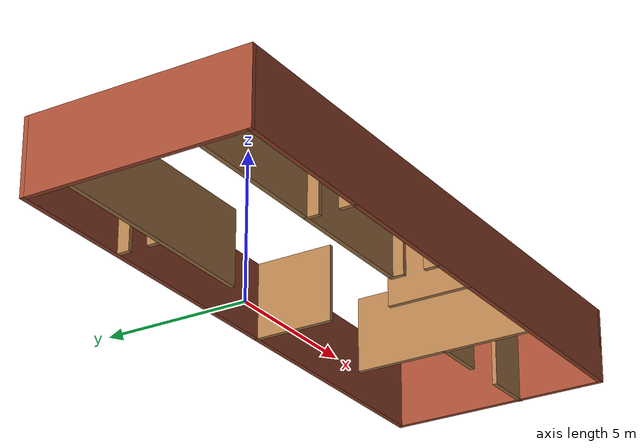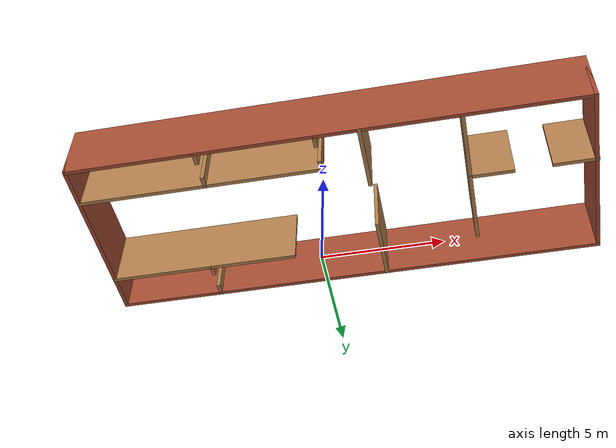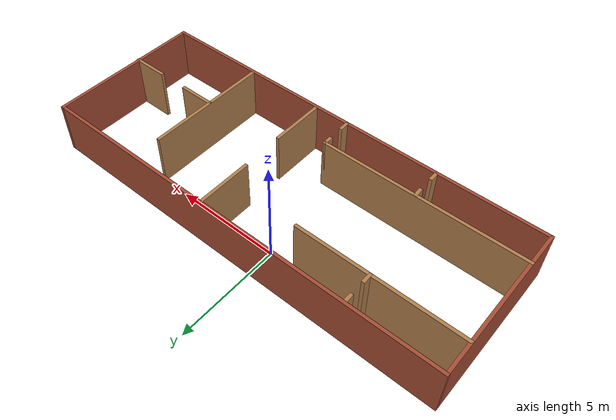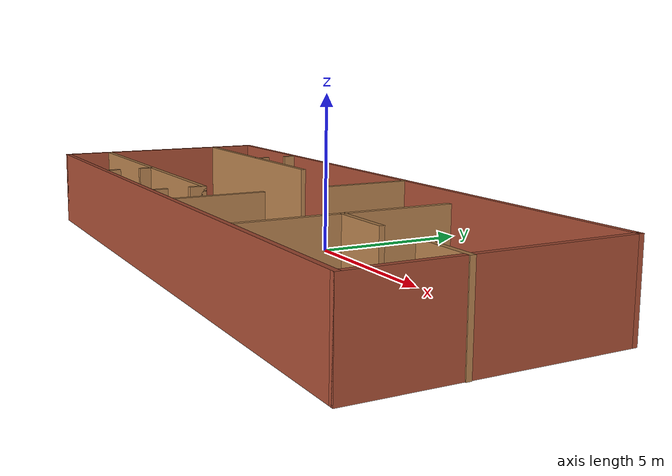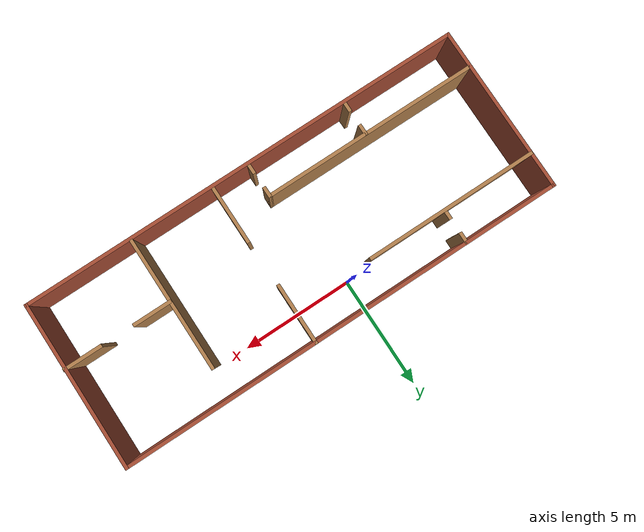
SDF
<?xml version='1.0'?>
<sdf version='1.7'>
  <model name='maze'>
    <pose>1.20188 -2.39312 0 0 -0 0</pose>
    <link name='Wall_1'>
      <collision name='Wall_1_Collision'>
        <geometry>
          <box>
            <size>7.5 0.15 2.5</size>
          </box>
        </geometry>
        <pose>0 0 1.25 0 -0 0</pose>
      </collision>
      <visual name='Wall_1_Visual'>
        <pose>0 0 1.25 0 -0 0</pose>
        <geometry>
          <box>
            <size>7.5 0.15 2.5</size>
          </box>
        </geometry>
        <material>
          <script>
            <uri>file://media/materials/scripts/gazebo.material</uri>
            <name>Gazebo/Bricks</name>
          </script>
          <ambient>1 1 1 1</ambient>
        </material>
        <meta>
          <layer>0</layer>
        </meta>
      </visual>
      <pose>-9.93853 0 0 0 -0 -1.5708</pose>
    </link>
    <link name='Wall_11'>
      <collision name='Wall_11_Collision'>
        <geometry>
          <box>
            <size>6 0.15 2.5</size>
          </box>
        </geometry>
        <pose>0 0 1.25 0 -0 0</pose>
      </collision>
      <visual name='Wall_11_Visual'>
        <pose>0 0 1.25 0 -0 0</pose>
        <geometry>
          <box>
            <size>6 0.15 2.5</size>
          </box>
        </geometry>
        <material>
          <script>
            <uri>file://media/materials/scripts/gazebo.material</uri>
            <name>Gazebo/Wood</name>
          </script>
          <ambient>1 1 1 1</ambient>
        </material>
        <meta>
          <layer>0</layer>
        </meta>
      </visual>
      <pose>5.16059 -0.630243 0 0 -0 -1.5708</pose>
    </link>
    <link name='Wall_13'>
      <collision name='Wall_13_Collision'>
        <geometry>
          <box>
            <size>1.75 0.15 2.5</size>
          </box>
        </geometry>
        <pose>0 0 1.25 0 -0 0</pose>
      </collision>
      <visual name='Wall_13_Visual'>
        <pose>0 0 1.25 0 -0 0</pose>
        <geometry>
          <box>
            <size>1.75 0.15 2.5</size>
          </box>
        </geometry>
        <material>
          <script>
            <uri>file://media/materials/scripts/gazebo.material</uri>
            <name>Gazebo/Wood</name>
          </script>
          <ambient>1 1 1 1</ambient>
        </material>
        <meta>
          <layer>0</layer>
        </meta>
      </visual>
      <pose>5.98071 -0.742392 0 0 -0 0</pose>
    </link>
    <link name='Wall_15'>
      <collision name='Wall_15_Collision'>
        <geometry>
          <box>
            <size>1.75 0.15 2.5</size>
          </box>
        </geometry>
        <pose>0 0 1.25 0 -0 0</pose>
      </collision>
      <visual name='Wall_15_Visual'>
        <pose>0 0 1.25 0 -0 0</pose>
        <geometry>
          <box>
            <size>1.75 0.15 2.5</size>
          </box>
        </geometry>
        <material>
          <script>
            <uri>file://media/materials/scripts/gazebo.material</uri>
            <name>Gazebo/Wood</name>
          </script>
          <ambient>1 1 1 1</ambient>
        </material>
        <meta>
          <layer>0</layer>
        </meta>
      </visual>
      <pose>9.13853 -0.762506 0 0 -0 0</pose>
    </link>
    <link name='Wall_17'>
      <collision name='Wall_17_Collision'>
        <geometry>
          <box>
            <size>0.5 0.15 2.5</size>
          </box>
        </geometry>
        <pose>0 0 1.25 0 -0 0</pose>
      </collision>
      <visual name='Wall_17_Visual'>
        <pose>0 0 1.25 0 -0 0</pose>
        <geometry>
          <box>
            <size>0.5 0.15 2.5</size>
          </box>
        </geometry>
        <material>
          <script>
            <uri>file://media/materials/scripts/gazebo.material</uri>
            <name>Gazebo/Wood</name>
          </script>
          <ambient>1 1 1 1</ambient>
        </material>
        <meta>
          <layer>0</layer>
        </meta>
      </visual>
      <pose>-5.78119 2.32896 0 0 -0 1.5708</pose>
    </link>
    <link name='Wall_19'>
      <collision name='Wall_19_Collision'>
        <geometry>
          <box>
            <size>0.5 0.15 2.5</size>
          </box>
        </geometry>
        <pose>0 0 1.25 0 -0 0</pose>
      </collision>
      <visual name='Wall_19_Visual'>
        <pose>0 0 1.25 0 -0 0</pose>
        <geometry>
          <box>
            <size>0.5 0.15 2.5</size>
          </box>
        </geometry>
        <material>
          <script>
            <uri>file://media/materials/scripts/gazebo.material</uri>
            <name>Gazebo/Wood</name>
          </script>
          <ambient>1 1 1 1</ambient>
        </material>
        <meta>
          <layer>0</layer>
        </meta>
      </visual>
      <pose>-5.78119 3.45532 0 0 -0 1.5708</pose>
    </link>
    <link name='Wall_2'>
      <collision name='Wall_2_Collision'>
        <geometry>
          <box>
            <size>20 0.15 2.5</size>
          </box>
        </geometry>
        <pose>0 0 1.25 0 -0 0</pose>
      </collision>
      <visual name='Wall_2_Visual'>
        <pose>0 0 1.25 0 -0 0</pose>
        <geometry>
          <box>
            <size>20 0.15 2.5</size>
          </box>
        </geometry>
        <material>
          <script>
            <uri>file://media/materials/scripts/gazebo.material</uri>
            <name>Gazebo/Bricks</name>
          </script>
          <ambient>1 1 1 1</ambient>
        </material>
        <meta>
          <layer>0</layer>
        </meta>
      </visual>
      <pose>-0.013534 -3.675 0 0 -0 0</pose>
    </link>
    <link name='Wall_21'>
      <collision name='Wall_21_Collision'>
        <geometry>
          <box>
            <size>0.5 0.15 2.5</size>
          </box>
        </geometry>
        <pose>0 0 1.25 0 -0 0</pose>
      </collision>
      <visual name='Wall_21_Visual'>
        <pose>0 0 1.25 0 -0 0</pose>
        <geometry>
          <box>
            <size>0.5 0.15 2.5</size>
          </box>
        </geometry>
        <material>
          <script>
            <uri>file://media/materials/scripts/gazebo.material</uri>
            <name>Gazebo/Wood</name>
          </script>
          <ambient>1 1 1 1</ambient>
        </material>
        <meta>
          <layer>0</layer>
        </meta>
      </visual>
      <pose>-4.88547 -2.29622 0 0 -0 -1.5708</pose>
    </link>
    <link name='Wall_23'>
      <collision name='Wall_23_Collision'>
        <geometry>
          <box>
            <size>0.5 0.15 2.5</size>
          </box>
        </geometry>
        <pose>0 0 1.25 0 -0 0</pose>
      </collision>
      <visual name='Wall_23_Visual'>
        <pose>0 0 1.25 0 -0 0</pose>
        <geometry>
          <box>
            <size>0.5 0.15 2.5</size>
          </box>
        </geometry>
        <material>
          <script>
            <uri>file://media/materials/scripts/gazebo.material</uri>
            <name>Gazebo/Wood</name>
          </script>
          <ambient>1 1 1 1</ambient>
        </material>
        <meta>
          <layer>0</layer>
        </meta>
      </visual>
      <pose>-4.88547 -3.44269 0 0 -0 -1.5708</pose>
    </link>
    <link name='Wall_25'>
      <collision name='Wall_25_Collision'>
        <geometry>
          <box>
            <size>0.5 0.15 2.5</size>
          </box>
        </geometry>
        <pose>0 0 1.25 0 -0 0</pose>
      </collision>
      <visual name='Wall_25_Visual'>
        <pose>0 0 1.25 0 -0 0</pose>
        <geometry>
          <box>
            <size>0.5 0.15 2.5</size>
          </box>
        </geometry>
        <material>
          <script>
            <uri>file://media/materials/scripts/gazebo.material</uri>
            <name>Gazebo/Wood</name>
          </script>
          <ambient>1 1 1 1</ambient>
        </material>
        <meta>
          <layer>0</layer>
        </meta>
      </visual>
      <pose>-0.337901 -2.27892 0 0 -0 -1.5708</pose>
    </link>
    <link name='Wall_27'>
      <collision name='Wall_27_Collision'>
        <geometry>
          <box>
            <size>0.5 0.15 2.5</size>
          </box>
        </geometry>
        <pose>0 0 1.25 0 -0 0</pose>
      </collision>
      <visual name='Wall_27_Visual'>
        <pose>0 0 1.25 0 -0 0</pose>
        <geometry>
          <box>
            <size>0.5 0.15 2.5</size>
          </box>
        </geometry>
        <material>
          <script>
            <uri>file://media/materials/scripts/gazebo.material</uri>
            <name>Gazebo/Wood</name>
          </script>
          <ambient>1 1 1 1</ambient>
        </material>
        <meta>
          <layer>0</layer>
        </meta>
      </visual>
      <pose>-0.319693 -3.43122 0 0 -0 -1.5708</pose>
    </link>
    <link name='Wall_3'>
      <collision name='Wall_3_Collision'>
        <geometry>
          <box>
            <size>7.5 0.15 2.5</size>
          </box>
        </geometry>
        <pose>0 0 1.25 0 -0 0</pose>
      </collision>
      <visual name='Wall_3_Visual'>
        <pose>0 0 1.25 0 -0 0</pose>
        <geometry>
          <box>
            <size>7.5 0.15 2.5</size>
          </box>
        </geometry>
        <material>
          <script>
            <uri>file://media/materials/scripts/gazebo.material</uri>
            <name>Gazebo/Bricks</name>
          </script>
          <ambient>1 1 1 1</ambient>
        </material>
        <meta>
          <layer>0</layer>
        </meta>
      </visual>
      <pose>9.91147 0 0 0 -0 1.5708</pose>
    </link>
    <link name='Wall_30'>
      <collision name='Wall_30_Collision'>
        <geometry>
          <box>
            <size>2.75 0.15 2.5</size>
          </box>
        </geometry>
        <pose>0 0 1.25 0 -0 0</pose>
      </collision>
      <visual name='Wall_30_Visual'>
        <pose>0 0 1.25 0 -0 0</pose>
        <geometry>
          <box>
            <size>2.75 0.15 2.5</size>
          </box>
        </geometry>
        <material>
          <script>
            <uri>file://media/materials/scripts/gazebo.material</uri>
            <name>Gazebo/Wood</name>
          </script>
          <ambient>1 1 1 1</ambient>
        </material>
        <meta>
          <layer>0</layer>
        </meta>
      </visual>
      <pose>1.30161 2.36623 0 0 -0 -1.5708</pose>
    </link>
    <link name='Wall_33'>
      <collision name='Wall_33_Collision'>
        <geometry>
          <box>
            <size>2.75 0.15 2.5</size>
          </box>
        </geometry>
        <pose>0 0 1.25 0 -0 0</pose>
      </collision>
      <visual name='Wall_33_Visual'>
        <pose>0 0 1.25 0 -0 0</pose>
        <geometry>
          <box>
            <size>2.75 0.15 2.5</size>
          </box>
        </geometry>
        <material>
          <script>
            <uri>file://media/materials/scripts/gazebo.material</uri>
            <name>Gazebo/Wood</name>
          </script>
          <ambient>1 1 1 1</ambient>
        </material>
        <meta>
          <layer>0</layer>
        </meta>
      </visual>
      <pose>1.36294 -2.36905 0 0 -0 -1.5708</pose>
    </link>
    <link name='Wall_4'>
      <collision name='Wall_4_Collision'>
        <geometry>
          <box>
            <size>20 0.15 2.5</size>
          </box>
        </geometry>
        <pose>0 0 1.25 0 -0 0</pose>
      </collision>
      <visual name='Wall_4_Visual'>
        <pose>0 0 1.25 0 -0 0</pose>
        <geometry>
          <box>
            <size>20 0.15 2.5</size>
          </box>
        </geometry>
        <material>
          <script>
            <uri>file://media/materials/scripts/gazebo.material</uri>
            <name>Gazebo/Bricks</name>
          </script>
          <ambient>1 1 1 1</ambient>
        </material>
        <meta>
          <layer>0</layer>
        </meta>
      </visual>
      <pose>-0.013534 3.675 0 0 -0 3.14159</pose>
    </link>
    <link name='Wall_6'>
      <collision name='Wall_6_Collision'>
        <geometry>
          <box>
            <size>7.75 0.15 2.5</size>
          </box>
        </geometry>
        <pose>0 0 1.25 0 -0 0</pose>
      </collision>
      <visual name='Wall_6_Visual'>
        <pose>0 0 1.25 0 -0 0</pose>
        <geometry>
          <box>
            <size>7.75 0.15 2.5</size>
          </box>
        </geometry>
        <material>
          <script>
            <uri>file://media/materials/scripts/gazebo.material</uri>
            <name>Gazebo/Wood</name>
          </script>
          <ambient>1 1 1 1</ambient>
        </material>
        <meta>
          <layer>0</layer>
        </meta>
      </visual>
      <pose>-6.12269 2.13932 0 0 -0 0</pose>
    </link>
    <link name='Wall_8'>
      <collision name='Wall_8_Collision'>
        <geometry>
          <box>
            <size>9.75 0.15 2.5</size>
          </box>
        </geometry>
        <pose>0 0 1.25 0 -0 0</pose>
      </collision>
      <visual name='Wall_8_Visual'>
        <pose>0 0 1.25 0 -0 0</pose>
        <geometry>
          <box>
            <size>9.75 0.15 2.5</size>
          </box>
        </geometry>
        <material>
          <script>
            <uri>file://media/materials/scripts/gazebo.material</uri>
            <name>Gazebo/Wood</name>
          </script>
          <ambient>1 1 1 1</ambient>
        </material>
        <meta>
          <layer>0</layer>
        </meta>
      </visual>
      <pose>-5.1379 -2.10392 0 0 -0 0</pose>
    </link>
    <static>1</static>
  </model>
</sdf>
